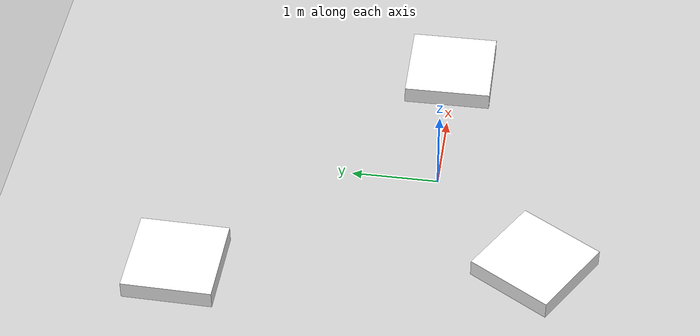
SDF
<sdf version="1.7">
 <world name="default">
  <light name="sun" type="directional">
   <pose>0 0 10 0 -0 0</pose>
   <diffuse>0.8 0.8 0.8 1</diffuse>
   <specular>0.2 0.2 0.2 1</specular>
   <attenuation>
    <range>1000</range>
    <constant>0.9</constant>
    <linear>0.01</linear>
    <quadratic>0.001</quadratic>
   </attenuation>
   <direction>-0.5 0.1 -0.9</direction>
   <spot><inner_angle>0</inner_angle><outer_angle>0</outer_angle><falloff>0</falloff></spot>
  </light>
  <model name="ground_plane">
   <static>1</static>
   <link name="link">
    <collision name="collision">
     <geometry><plane><normal>0 0 1</normal><size>100 100</size></plane></geometry>
     <surface>
      <contact><collide_bitmask>65535</collide_bitmask></contact>
      <friction><ode><mu>100</mu><mu2>50</mu2></ode></friction>
     </surface>
    </collision>
    <visual name="visual">
     <cast_shadows>0</cast_shadows>
     <geometry><plane><normal>0 0 1</normal><size>100 100</size></plane></geometry>
     <material>
      <script><uri>file://media/materials/scripts/gazebo.material</uri><name>Gazebo/Grey</name></script>
     </material>
    </visual>
   </link>
  </model>
  <physics name="default_physics" default="0" type="ode">
   <ode>
    <solver>
     <type>quick</type>
     <iters>10</iters>
     <sor>1.3</sor>
     <use_dynamic_moi_rescaling>0</use_dynamic_moi_rescaling>
    </solver>
    <constraints>
     <cfm>0</cfm>
     <erp>0.2</erp>
     <contact_max_correcting_vel>100</contact_max_correcting_vel>
     <contact_surface_layer>0.001</contact_surface_layer>
    </constraints>
   </ode>
   <max_step_size>0.004</max_step_size>
   <real_time_factor>1</real_time_factor>
   <real_time_update_rate>250</real_time_update_rate>
  </physics>
  <gravity>0 0 -9.8066</gravity>
  <magnetic_field>6e-06 2.3e-05 -4.2e-05</magnetic_field>
  <atmosphere type="adiabatic"/>
  <scene><ambient>0.4 0.4 0.4 1</ambient><background>0.7 0.7 0.7 1</background><shadows>1</shadows></scene>
  <spherical_coordinates>
   <surface_model>EARTH_WGS84</surface_model>
   <latitude_deg>0</latitude_deg>
   <longitude_deg>0</longitude_deg>
   <elevation>0</elevation>
   <heading_deg>0</heading_deg>
  </spherical_coordinates>
  <model name="aruco_marker1_clone_5">
   <link name="marker">
    <visual name="visual">
     <geometry><box><size>1 0.2 1</size></box></geometry>
     <material>
      <script>
       <uri>model://aruco_marker1/materials/scripts</uri>
       <uri>model://aruco_marker1/materials/textures</uri>
       <name>arucomarker1/Marker</name>
      </script>
      <ambient>1 1 1 1</ambient>
      <diffuse>1 1 1 1</diffuse>
      <specular>0 0 0 1</specular>
      <emissive>1 1 1 0</emissive>
      <shader type="vertex"><normal_map>__default__</normal_map></shader>
     </material>
    </visual>
    <collision name="collision"><geometry><box><size>1.2 0.8 1</size></box></geometry></collision>
    <inertial>
     <inertia><ixx>1</ixx><ixy>0</ixy><ixz>0</ixz><iyy>1</iyy><iyz>0</iyz><izz>1</izz></inertia>
     <mass>1</mass>
    </inertial>
   </link>
   <pose>-1.50187 -1.22569 0.4 1.5708 -0 -2.11732</pose>
  </model>
  <model name="aruco_marker1_clone_7">
   <link name="marker">
    <visual name="visual">
     <geometry><box><size>1 0.2 1</size></box></geometry>
     <material>
      <script>
       <uri>model://aruco_marker1/materials/scripts</uri>
       <uri>model://aruco_marker1/materials/textures</uri>
       <name>arucomarker1/Marker</name>
      </script>
      <ambient>1 1 1 1</ambient>
      <diffuse>1 1 1 1</diffuse>
      <specular>0 0 0 1</specular>
      <emissive>1 1 1 0</emissive>
      <shader type="vertex"><normal_map>__default__</normal_map></shader>
     </material>
    </visual>
    <collision name="collision"><geometry><box><size>1.2 0.8 1</size></box></geometry></collision>
    <inertial>
     <inertia><ixx>1</ixx><ixy>0</ixy><ixz>0</ixz><iyy>1</iyy><iyz>0</iyz><izz>1</izz></inertia>
     <mass>1</mass>
    </inertial>
   </link>
   <pose>1.50221 0.018415 0.39994 1.57083 -7.2e-05 -3.13313</pose>
  </model>
  <model name="aruco_marker1_clone_13">
   <link name="marker">
    <visual name="visual">
     <geometry><box><size>1 0.2 1</size></box></geometry>
     <material>
      <script>
       <uri>model://aruco_marker1/materials/scripts</uri>
       <uri>model://aruco_marker1/materials/textures</uri>
       <name>arucomarker1/Marker</name>
      </script>
      <ambient>1 1 1 1</ambient>
      <diffuse>1 1 1 1</diffuse>
      <specular>0 0 0 1</specular>
      <emissive>1 1 1 0</emissive>
      <shader type="vertex"><normal_map>__default__</normal_map></shader>
     </material>
    </visual>
    <collision name="collision"><geometry><box><size>1.2 0.8 1</size></box></geometry></collision>
    <inertial>
     <inertia><ixx>1</ixx><ixy>0</ixy><ixz>0</ixz><iyy>1</iyy><iyz>0</iyz><izz>1</izz></inertia>
     <mass>1</mass>
    </inertial>
   </link>
   <pose>-2.02305 2.65419 0.399983 1.5708 2.9e-05 3.12308</pose>
  </model>
 </world>
</sdf>
